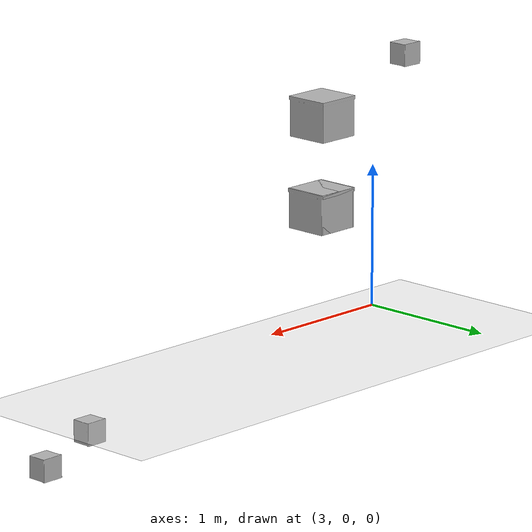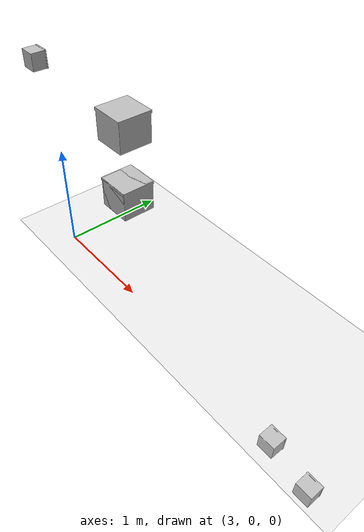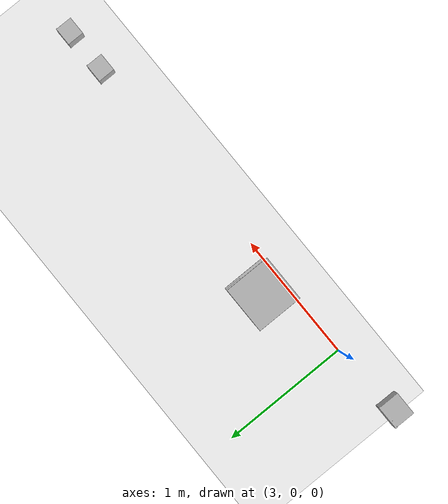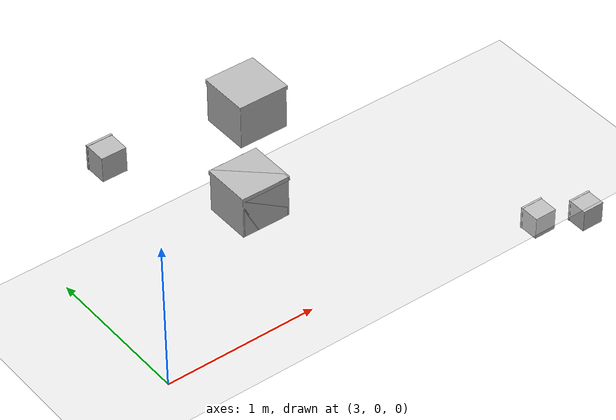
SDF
<sdf version="1.6">
 <world name="default">
  <plugin filename="gz-sim-physics-system" name="gz::sim::systems::Physics"/>
  <plugin filename="gz-sim-air-pressure-system" name="gz::sim::systems::AirPressure"/>
  <plugin filename="gz-sim-altimeter-system" name="gz::sim::systems::Altimeter"/>
  <plugin filename="gz-sim-imu-system" name="gz::sim::systems::Imu"/>
  <plugin filename="gz-sim-sensors-system" name="gz::sim::systems::Sensors">
   <render_engine>ogre2</render_engine>
  </plugin>
  <plugin filename="gz-sim-magnetometer-system" name="gz::sim::systems::Magnetometer"/>
  <plugin filename="gz-sim-forcetorque-system" name="gz::sim::systems::ForceTorque"/>
  <plugin filename="gz-sim-user-commands-system" name="gz::sim::systems::UserCommands"/>
  <plugin filename="gz-sim-scene-broadcaster-system" name="gz::sim::systems::SceneBroadcaster"/>
  <gravity>0 0 -9.81</gravity>
  <light type="directional" name="sun">
   <pose>0 0 10 0 0 0</pose>
   <diffuse>0.8 0.8 0.8 1</diffuse>
   <specular>0.2 0.2 0.2 1</specular>
   <attenuation>
    <range>1000</range>
    <constant>0.9</constant>
    <linear>0.01</linear>
    <quadratic>0.001</quadratic>
   </attenuation>
   <direction>-0.5 0.1 -0.9</direction>
  </light>
  <model name="ground_plane">
   <static>true</static>
   <link name="link">
    <collision name="collision">
     <geometry><plane><normal>0 0 1</normal><size>100 100</size></plane></geometry>
    </collision>
    <visual name="visual">
     <geometry><plane><normal>0 0 1</normal><size>100 100</size></plane></geometry>
     <material>
      <ambient>0.8 0.8 0.8 1</ambient>
      <diffuse>0.8 0.8 0.8 1</diffuse>
      <specular>0.8 0.8 0.8 1</specular>
     </material>
    </visual>
   </link>
  </model>
  <model name="box2_001">
   <include><uri>model://box2_model</uri></include>
   <pose>3.72 0.2 0.87 1.57 0.0 -1.57</pose>
  </model>
  <model name="box3_001">
   <include><uri>model://box3_model</uri></include>
   <pose>3.72 0.2 1.5 1.57 0.0 -1.57</pose>
  </model>
  <model name="box_green_001">
   <include><uri>model://box_green_model</uri></include>
   <pose>3.72 0.2 0.87 1.57 0.0 -1.57</pose>
  </model>
  <model name="box_red_001">
   <include><uri>model://box_red_model</uri></include>
   <pose>3.72 0.2 1.5 1.57 0.0 -1.57</pose>
  </model>
  <model name="pin_001">
   <include><uri>model://pin_model</uri></include>
   <pose>5.68 -0.04 -0.26 0.0 0.0 0.0</pose>
  </model>
  <model name="camera_001">
   <include><uri>model://pin_model</uri></include>
   <pose>2.68 -0.04 1.74 0.0 0.0 0.0</pose>
  </model>
  <model name="pin_002">
   <include><uri>model://pin_model</uri></include>
   <pose>6.07 -0.04 -0.41 0.0 0.0 0.0</pose>
  </model>
  <physics name="update_rate" type="ode">
   <real_time_update_rate>2000</real_time_update_rate>
   <max_step_size>0.0005</max_step_size>
   <bullet>
    <solver><iters>100</iters><sor>1.55</sor></solver>
    <constraints><contact_surface_layer>0.2</contact_surface_layer><cfm>0.005</cfm><erp>0.2</erp></constraints>
   </bullet>
   <ode>
    <solver><iters>50</iters><sor>1.20</sor></solver>
    <constraints>
     <contact_surface_layer>0.0002</contact_surface_layer>
     <contact_max_correcting_vel>500</contact_max_correcting_vel>
     <cfm>0.000001</cfm>
     <erp>0.3</erp>
    </constraints>
   </ode>
  </physics>
 </world>
</sdf>

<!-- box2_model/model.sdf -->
<sdf version="1.6">
  <model name="box2_model">
    <static>false</static>

    <link name="link">
      <pose>0 0 0 0 0 0</pose>

      <!-- VISUAL (solo grafica) -->
      <visual name="visual">
      <pose>-0.075 -0.145 0.0 0 0 0</pose>
        <geometry>
          <mesh>
            <uri>model://box2_model/meshes/new_box.obj</uri>
            <scale>0.012 0.01 0.008</scale>
          </mesh>
        </geometry>
      </visual>

      <!-- COLLISION (fisica reale) -->
      <collision name="collision">
        <geometry>
          <box>
            <size>0.285 0.275 0.285</size>
          </box>
        </geometry>

        <surface>
          <friction>
            <ode>
              <mu>10.0</mu>
              <mu2>10.0</mu2>
              <slip1>0.0</slip1>
              <slip2>0.0</slip2>
            </ode>
          </friction>

        </surface>

      </collision>

      <!-- Aggiungiamo massa e inerzia (importantissimo se static=false) -->
      <inertial>
        <mass>2</mass>
        <inertia>
          <ixx>10000</ixx>
          <iyy>10000</iyy>
          <izz>10000</izz>
          <ixy>0.0</ixy>
          <ixz>0.0</ixz>
          <iyz>0.0</iyz>
        </inertia>
      </inertial>

    </link>
  </model>
</sdf>

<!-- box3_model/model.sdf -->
<sdf version="1.6">
  <model name="box3_model">
    <static>false</static>

    <link name="link">
      <pose>0 0 0 0 0 0</pose>

      <!-- VISUAL (solo grafica) -->
      <visual name="visual">
      <pose>-0.075 -0.145 0.0 0 0 0</pose>
        <geometry>
          <mesh>
            <uri>model://box3_model/meshes/colored_box.obj</uri>
            <scale>0.012 0.01 0.008</scale>
          </mesh>
        </geometry>
      </visual>

      <!-- COLLISION (fisica reale) -->
      <collision name="collision">
        <geometry>
          <box>
            <size>0.285 0.275 0.285</size>
          </box>
        </geometry>

        <surface>
          <friction>
            <ode>
              <mu>10.0</mu>
              <mu2>10.0</mu2>
              <slip1>0.0</slip1>
              <slip2>0.0</slip2>
            </ode>
          </friction>

        </surface>

      </collision>

      <!-- Aggiungiamo massa e inerzia (importantissimo se static=false) -->
      <inertial>
        <mass>2</mass>
        <inertia>
          <ixx>10000</ixx>
          <iyy>10000</iyy>
          <izz>10000</izz>
          <ixy>0.0</ixy>
          <ixz>0.0</ixz>
          <iyz>0.0</iyz>
        </inertia>
      </inertial>

    </link>
  </model>
</sdf>

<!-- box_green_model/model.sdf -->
<sdf version="1.6">
  <model name="box_green_model">
    <static>true</static>

    <link name="link">
      <pose>0 0 0 0 0 0</pose>

      <!-- VISUAL (solo grafica) -->
      <visual name="visual">
      <pose>-0.075 -0.145 0.0 0 0 0</pose>
        <geometry>
          <mesh>
            <uri>model://box_green_model/meshes/green_box.obj</uri>
            <scale>0.012 0.01 0.008</scale>
          </mesh>
        </geometry>
      </visual>

      <!-- COLLISION (fisica reale) -->
      <collision name="collision">
        <geometry>
          <box>
            <size>0.285 0.275 0.285</size>
          </box>
        </geometry>

        <surface>
          <friction>
            <ode>
              <mu>10.0</mu>
              <mu2>10.0</mu2>
              <slip1>0.0</slip1>
              <slip2>0.0</slip2>
            </ode>
          </friction>

        </surface>

      </collision>

      <!-- Aggiungiamo massa e inerzia (importantissimo se static=false) -->
      <inertial>
        <mass>2</mass>
        <inertia>
          <ixx>10000</ixx>
          <iyy>10000</iyy>
          <izz>10000</izz>
          <ixy>0.0</ixy>
          <ixz>0.0</ixz>
          <iyz>0.0</iyz>
        </inertia>
      </inertial>

    </link>
  </model>
</sdf>

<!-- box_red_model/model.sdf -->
<sdf version="1.6">
  <model name="box_red_model">
    <static>true</static>

    <link name="link">
      <pose>0 0 0 0 0 0</pose>

      <!-- VISUAL (solo grafica) -->
      <visual name="visual">
      <pose>-0.075 -0.145 0.0 0 0 0</pose>
        <geometry>
          <mesh>
            <uri>model://box_red_model/meshes/red_box.obj</uri>
            <scale>0.012 0.01 0.008</scale>
          </mesh>
        </geometry>
      </visual>

      <!-- COLLISION (fisica reale) -->
      <collision name="collision">
        <geometry>
          <box>
            <size>0.285 0.275 0.285</size>
          </box>
        </geometry>

        <surface>
          <friction>
            <ode>
              <mu>10.0</mu>
              <mu2>10.0</mu2>
              <slip1>0.0</slip1>
              <slip2>0.0</slip2>
            </ode>
          </friction>

        </surface>

      </collision>

      <!-- Aggiungiamo massa e inerzia (importantissimo se static=false) -->
      <inertial>
        <mass>2</mass>
        <inertia>
          <ixx>10000</ixx>
          <iyy>10000</iyy>
          <izz>10000</izz>
          <ixy>0.0</ixy>
          <ixz>0.0</ixz>
          <iyz>0.0</iyz>
        </inertia>
      </inertial>

    </link>
  </model>
</sdf>

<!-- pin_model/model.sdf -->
<sdf version="1.6">
  <model name="box3_model">
    <static>true</static>

    <link name="link">
      <pose>0 0 0 0 0 0</pose>

      <!-- VISUAL (solo grafica) -->
      <visual name="visual">
        <geometry>
          <mesh>
            <uri>model://box3_model/meshes/colored_box.obj</uri>
            <scale>0.006 0.005 0.004</scale>
          </mesh>
        </geometry>
      </visual>

    </link>
  </model>
</sdf>
